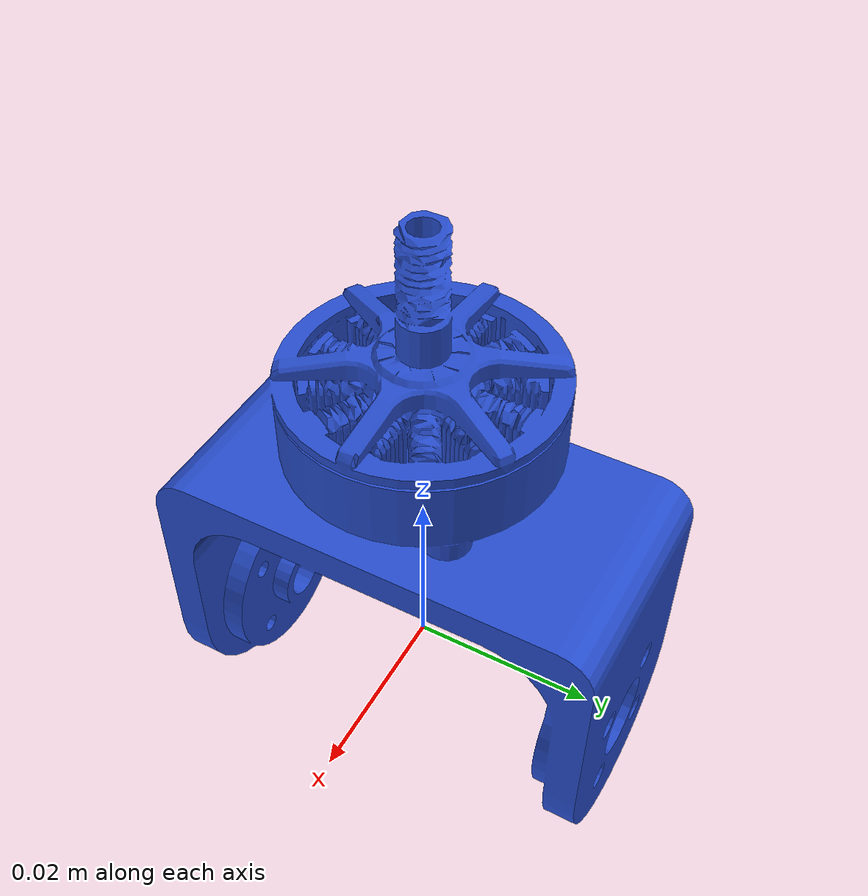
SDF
<?xml version="1.0" ?>

  <sdf version="1.5">
    <model name="usl_bv2_second_tilt">
      <link name='tilt'>
      <pose>0.0 -0.0 0.0 0 -0 0</pose>
      <inertial>
        <pose>0 0 0 0 -0 0</pose>
        <mass>0.001</mass>
        <inertia>
          <ixx>0.001</ixx>
          <ixy>0</ixy>
          <ixz>0</ixz>
          <iyy>0.01</iyy>
          <iyz>0</iyz>
          <izz>0.001</izz>
        </inertia>
      </inertial>
      <collision name='tilt_collision'>
        <pose>0 0 0 0 -0 0</pose>
        <geometry>
          <box>
            <size>0.0 0.0 0.0</size>
          </box>
        </geometry>
        <max_contacts>1</max_contacts>
      </collision>
      <visual name='tilt_visual'>
        <pose>0 0 0 0 -0 0</pose>
        <geometry>
          <mesh>
            <uri>model://usl_bv2_second_tilt2/meshes/tilt2.dae</uri>
          </mesh>
        </geometry>
        <material>
          <script>
            <name>Gazebo/Blue</name>
            <uri>__default__</uri>
          </script>
        </material>
      </visual>
      <gravity>1</gravity>
      <velocity_decay />
      <self_collide>0</self_collide>
    </link>
  </model>
</sdf>
